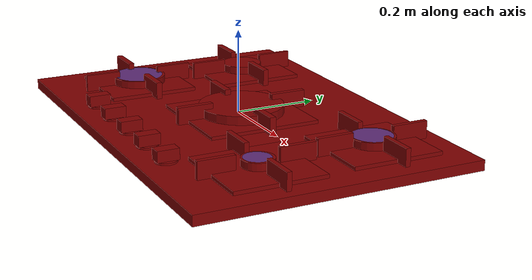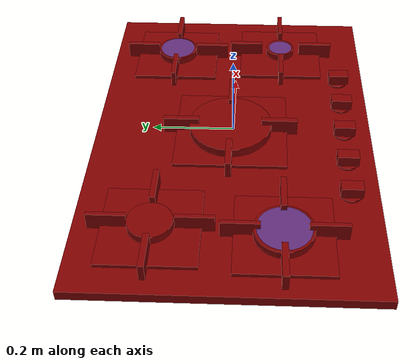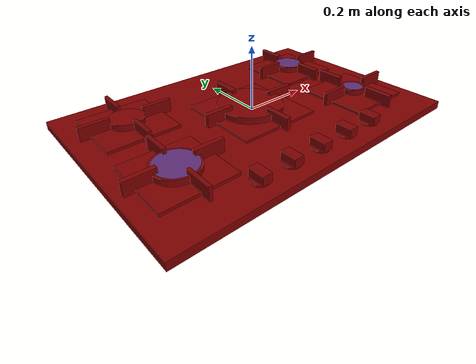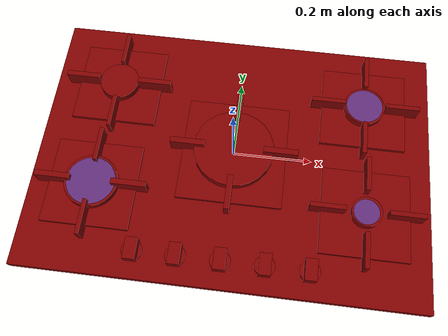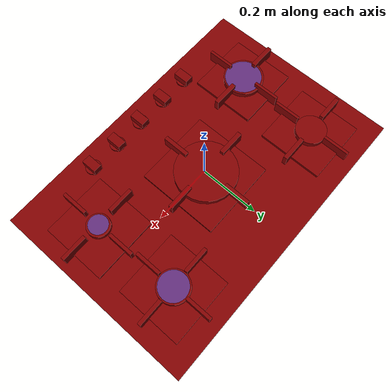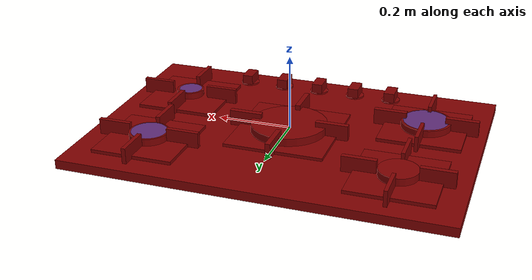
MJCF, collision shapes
<?xml version='1.0' encoding='UTF-8'?>
<mujoco model="model">
  <compiler angle="radian"/>
  <asset>
    <mesh file="visuals/knob_center.obj" name="knob_center_vis"/>
    <mesh file="visuals/knob_front_left.obj" name="knob_front_left_vis"/>
    <mesh file="visuals/knob_front_right.obj" name="knob_front_right_vis"/>
    <mesh file="visuals/knob_rear_left.obj" name="knob_rear_left_vis"/>
    <mesh file="visuals/knob_rear_right.obj" name="knob_rear_right_vis"/>
    <mesh file="visuals/Body001.obj" name="Body001_vis"/>
    <texture file="visuals/T_BC001.png" name="Body001_material" type="2d"/>
    <material name="Body001_material" rgba="1 1 1 1.0" texture="Body001_material" shininess="0.141421377658844" specular="1.5"/>
    <texture file="visuals/T_BC001.png" name="knob_center_material" type="2d"/>
    <material name="knob_center_material" rgba="1 1 1 1.0" texture="knob_center_material" shininess="0.141421377658844" specular="0.8"/>
    <texture file="visuals/T_BC001.png" name="knob_front_left_material" type="2d"/>
    <material name="knob_front_left_material" rgba="1 1 1 1.0" texture="knob_front_left_material" shininess="0.141421377658844" specular="0.8"/>
    <texture file="visuals/T_BC001.png" name="knob_front_right_material" type="2d"/>
    <material name="knob_front_right_material" rgba="1 1 1 1.0" texture="knob_front_right_material" shininess="0.141421377658844" specular="0.8"/>
    <texture file="visuals/T_BC001.png" name="knob_rear_left_material" type="2d"/>
    <material name="knob_rear_left_material" rgba="1 1 1 1.0" texture="knob_rear_left_material" shininess="0.141421377658844" specular="0.8"/>
    <texture file="visuals/T_BC001.png" name="knob_rear_right_material" type="2d"/>
    <material name="knob_rear_right_material" rgba="1 1 1 1.0" texture="knob_rear_right_material" shininess="0.141421377658844" specular="0.8"/>
  </asset>
  <default>
    <default class="visual">
      <geom conaffinity="0" contype="0" group="1" type="mesh"/>
    </default>
    <default class="collision">
      <geom group="0" rgba="0.5 0 0 0.5"/>
    </default>
    <default class="spawn">
      <geom group="0" rgba="1 1 1 0.5" contype="0" conaffinity="0"/>
      <site group="0" rgba="1 1 1 0.5"/>
    </default>
    <default class="region">
      <geom group="1" conaffinity="0" contype="0" rgba="0 1 0 0"/>
    </default>
  </default>
  <worldbody>
    <body>
      <body name="object">
        <site type="cylinder" rgba="0.3 0.4 1 0.5" size="0.047458648681640625 0.005398983135819435" pos="-0.328487 0.168731 0.013471" name="burner_on_rear_left"/>
        <site type="cylinder" rgba="0.3 0.4 1 0.5" size="0.06139972433447838 0.006224197335541248" pos="-0.342058 -0.121237 0.013096" name="burner_on_front_left"/>
        <site type="cylinder" rgba="0.3 0.4 1 0.5" size="0.08221416175365448 0.005949585698544979" pos="0.000758 0.006978 0.013259" name="burner_on_center"/>
        <site type="cylinder" rgba="0.3 0.4 1 0.5" size="0.04726271331310272 0.006255870219320059" pos="0.328841 0.168733 0.013259" name="burner_on_rear_right"/>
        <site type="cylinder" rgba="0.3 0.4 1 0.5" size="0.032118458300828934 0.0054710628464818" pos="0.340552 -0.121608 0.013391" name="burner_on_front_right"/>
        <geom mesh="Body001_vis" type="mesh" solimp="0.998 0.998 0.001" solref="0.001 1" density="100" friction="0.95 0.3 0.1" class="visual" material="Body001_material"/>
        <geom class="collision" type="box" pos="0.000457 0.000004 -0.021319" size="0.5035309791564941 0.3431375324726105 0.012366445735096931" quat="1.0 0.0 0.0 0.0"/>
        <geom class="collision" type="cylinder" pos="0.000005 0.007668 0.006163" size="0.10249922424554825 0.01416544895619154" quat="1.0 0.0 0.0 0.0"/>
        <geom class="collision" type="cylinder" pos="0.328986 0.169152 0.008405" size="0.05220360681414604 0.010255404748022556" quat="1.0 0.0 0.0 0.0"/>
        <geom class="collision" type="cylinder" pos="0.341584 -0.120549 0.009477" size="0.037887655198574066 0.009043392725288868" quat="1.0 0.0 0.0 0.0"/>
        <geom class="collision" type="cylinder" pos="-0.342577 -0.120549 0.006944" size="0.0672934427857399 0.011246925219893456" quat="1.0 0.0 0.0 0.0"/>
        <geom class="collision" type="cylinder" pos="-0.329013 0.169152 0.008689" size="0.05117321386933327 0.010468537919223309" quat="1.0 0.0 0.0 0.0"/>
        <geom class="collision" type="box" pos="0.340904 -0.217973 0.012848" size="0.005613735876977444 0.04403838515281677 0.02094879373908043" quat="1.0 0.0 0.0 0.0"/>
        <geom class="collision" type="box" pos="0.340904 -0.025774 0.012848" size="0.005613735876977444 0.04403838515281677 0.02094879373908043" quat="1.0 0.0 0.0 0.0"/>
        <geom class="collision" type="box" pos="0.437089 -0.121129 0.012848" size="0.005801188759505749 0.04403838515281677 0.02094879373908043" quat="0.7071068286895752 0.0 -0.0 -0.7071067690849304"/>
        <geom class="collision" type="box" pos="0.244890 -0.121129 0.012848" size="0.005801188759505749 0.04403838515281677 0.02094879373908043" quat="0.7071068286895752 0.0 -0.0 -0.7071067690849304"/>
        <geom class="collision" type="box" pos="0.233171 0.168823 0.012848" size="0.005801188759505749 0.04403838515281677 0.02094879373908043" quat="0.7071068286895752 0.0 -0.0 -0.7071067690849304"/>
        <geom class="collision" type="box" pos="0.425370 0.168823 0.012848" size="0.005801188759505749 0.04403838515281677 0.02094879373908043" quat="0.7071068286895752 0.0 -0.0 -0.7071067690849304"/>
        <geom class="collision" type="box" pos="0.329184 0.264178 0.012848" size="0.005613735876977444 0.04403838515281677 0.02094879373908043" quat="1.0 0.0 0.0 0.0"/>
        <geom class="collision" type="box" pos="0.329184 0.071979 0.012848" size="0.005613735876977444 0.04403838515281677 0.02094879373908043" quat="1.0 0.0 0.0 0.0"/>
        <geom class="collision" type="box" pos="-0.327840 0.071979 0.012848" size="0.004781751893460751 0.04403838515281677 0.02094879373908043" quat="1.0 0.0 0.0 0.0"/>
        <geom class="collision" type="box" pos="-0.327840 0.264178 0.012848" size="0.004781751893460751 0.04403838515281677 0.02094879373908043" quat="1.0 0.0 0.0 0.0"/>
        <geom class="collision" type="box" pos="-0.231741 0.169715 0.012848" size="0.006769811734557152 0.04403838515281677 0.02094879373908043" quat="0.7071068286895752 0.0 -0.0 -0.7071067690849304"/>
        <geom class="collision" type="box" pos="-0.423940 0.169715 0.012848" size="0.006769811734557152 0.04403838515281677 0.02094879373908043" quat="0.7071068286895752 0.0 -0.0 -0.7071067690849304"/>
        <geom class="collision" type="box" pos="-0.437504 -0.120537 0.012848" size="0.007069258950650692 0.04403838515281677 0.02094879373908043" quat="0.7071068286895752 0.0 -0.0 -0.7071067690849304"/>
        <geom class="collision" type="box" pos="-0.245305 -0.120537 0.012848" size="0.007069258950650692 0.04403838515281677 0.02094879373908043" quat="0.7071068286895752 0.0 -0.0 -0.7071067690849304"/>
        <geom class="collision" type="box" pos="-0.341404 -0.025774 0.012848" size="0.004781751893460751 0.04403838515281677 0.02094879373908043" quat="1.0 0.0 0.0 0.0"/>
        <geom class="collision" type="box" pos="-0.341404 -0.217973 0.012848" size="0.004781751893460751 0.04403838515281677 0.02094879373908043" quat="1.0 0.0 0.0 0.0"/>
        <geom class="collision" type="box" pos="0.001246 -0.114555 0.012848" size="0.006762636825442314 0.04403838515281677 0.02094879373908043" quat="1.0 0.0 0.0 0.0"/>
        <geom class="collision" type="box" pos="0.001246 0.129786 0.012848" size="0.006762636825442314 0.04403838515281677 0.02094879373908043" quat="1.0 0.0 0.0 0.0"/>
        <geom class="collision" type="box" pos="0.119984 0.007812 0.012848" size="0.007334345486015081 0.04403838515281677 0.02094879373908043" quat="0.7071068286895752 0.0 -0.0 -0.7071067690849304"/>
        <geom class="collision" type="box" pos="-0.118397 0.007812 0.012848" size="0.007334345486015081 0.04403838515281677 0.02094879373908043" quat="0.7071068286895752 0.0 -0.0 -0.7071067690849304"/>
        <geom class="collision" type="box" pos="0.340342 -0.120889 -0.004497" size="0.11018186807632446 0.11018186807632446 0.004455766174942255" quat="1.0 0.0 0.0 0.0"/>
        <geom class="collision" type="box" pos="0.328622 0.168229 -0.004497" size="0.11018186807632446 0.11018186807632446 0.004455766174942255" quat="1.0 0.0 0.0 0.0"/>
        <geom class="collision" type="box" pos="-0.328277 0.168229 -0.004497" size="0.11018186807632446 0.11018186807632446 0.004455766174942255" quat="1.0 0.0 0.0 0.0"/>
        <geom class="collision" type="box" pos="-0.341841 -0.120889 -0.004497" size="0.11018186807632446 0.11018186807632446 0.004455766174942255" quat="1.0 0.0 0.0 0.0"/>
        <geom class="collision" type="box" pos="0.001749 0.004759 -0.004892" size="0.13317753374576569 0.1373956948518753 0.004061312414705753" quat="1.0 0.0 0.0 0.0"/>
        <body name="knob_center">
          <joint axis="0.0 0.0 1.0" pos="0.000758 -0.276470 0.001529" limited="true" name="knob_center_joint" range="0.0 3.141592653589793" type="hinge" damping="0.05" armature="0.001"/>
          <geom mesh="knob_center_vis" type="mesh" solimp="0.998 0.998 0.001" solref="0.001 1" density="100" friction="0.95 0.3 0.1" class="visual" material="knob_center_material"/>
          <geom class="collision" type="box" pos="0.000674 -0.276619 0.009551" size="0.014874361455440521 0.026102233678102493 0.013480888679623604" quat="1.0 0.0 0.0 0.0"/>
          <geom class="collision" type="cylinder" pos="0.000965 -0.276488 -0.005909" size="0.02549481950700283 0.002379579236730933" quat="1.0 0.0 0.0 0.0"/>
        </body>
        <body name="knob_front_left">
          <joint axis="0.0 0.0 1.0" pos="-0.212437 -0.276470 0.006493" limited="true" name="knob_front_left_joint" range="0.0 3.141592653589793" type="hinge" damping="0.05" armature="0.001"/>
          <geom mesh="knob_front_left_vis" type="mesh" solimp="0.998 0.998 0.001" solref="0.001 1" density="100" friction="0.95 0.3 0.1" class="visual" material="knob_front_left_material"/>
          <geom class="collision" type="box" pos="-0.211994 -0.276619 0.009551" size="0.014874360524117947 0.026102233678102493 0.013480888679623604" quat="1.0 0.0 0.0 0.0"/>
          <geom class="collision" type="cylinder" pos="-0.212555 -0.276488 -0.005909" size="0.02549481950700283 0.002379579236730933" quat="1.0 0.0 0.0 0.0"/>
        </body>
        <body name="knob_front_right">
          <joint axis="0.0 0.0 1.0" pos="0.215463 -0.276470 0.006493" limited="true" name="knob_front_right_joint" range="0.0 3.141592653589793" type="hinge" damping="0.05" armature="0.001"/>
          <geom mesh="knob_front_right_vis" type="mesh" solimp="0.998 0.998 0.001" solref="0.001 1" density="100" friction="0.95 0.3 0.1" class="visual" material="knob_front_right_material"/>
          <geom class="collision" type="box" pos="0.215268 -0.276619 0.009751" size="0.014874360524117947 0.026102233678102493 0.01328088715672493" quat="1.0 0.0 0.0 0.0"/>
          <geom class="collision" type="cylinder" pos="0.215479 -0.276488 -0.005909" size="0.02549481764435768 0.002379579236730933" quat="1.0 0.0 0.0 0.0"/>
        </body>
        <body name="knob_rear_left">
          <joint axis="0.0 0.0 1.0" pos="-0.107011 -0.276470 0.006493" limited="true" name="knob_rear_left_joint" range="0.0 3.141592653589793" type="hinge" damping="0.05" armature="0.001"/>
          <geom mesh="knob_rear_left_vis" type="mesh" solimp="0.998 0.998 0.001" solref="0.001 1" density="100" friction="0.95 0.3 0.1" class="visual" material="knob_rear_left_material"/>
          <geom class="collision" type="box" pos="-0.106745 -0.276619 0.009551" size="0.01487436331808567 0.026102233678102493 0.013480888679623604" quat="1.0 0.0 0.0 0.0"/>
          <geom class="collision" type="cylinder" pos="-0.107095 -0.276488 -0.005909" size="0.02549481950700283 0.002379579236730933" quat="1.0 0.0 0.0 0.0"/>
        </body>
        <body name="knob_rear_right">
          <joint axis="0.0 0.0 1.0" pos="0.107652 -0.276470 0.006493" limited="true" name="knob_rear_right_joint" range="0.0 3.141592653589793" type="hinge" damping="0.05" armature="0.001"/>
          <geom mesh="knob_rear_right_vis" type="mesh" solimp="0.998 0.998 0.001" solref="0.001 1" density="100" friction="0.95 0.3 0.1" class="visual" material="knob_rear_right_material"/>
          <geom class="collision" type="box" pos="0.107646 -0.276619 0.009551" size="0.01487436331808567 0.026102233678102493 0.013480888679623604" quat="1.0 0.0 0.0 0.0"/>
          <geom class="collision" type="cylinder" pos="0.107772 -0.276488 -0.005909" size="0.02549481764435768 0.002379579236730933" quat="1.0 0.0 0.0 0.0"/>
        </body>
        <geom class="region" name="reg_main" type="box" pos="4.999999999977245e-06 0.0 -0.021603" size="0.5037739999999999 0.343182 0.012083"/>
      </body>
    </body>
  </worldbody>
  <actuator>
    <motor name="knob_center_joint_actuator" joint="knob_center_joint" gear="10"/>
    <motor name="knob_front_left_joint_actuator" joint="knob_front_left_joint" gear="10"/>
    <motor name="knob_front_right_joint_actuator" joint="knob_front_right_joint" gear="10"/>
    <motor name="knob_rear_left_joint_actuator" joint="knob_rear_left_joint" gear="10"/>
    <motor name="knob_rear_right_joint_actuator" joint="knob_rear_right_joint" gear="10"/>
  </actuator>
</mujoco>
